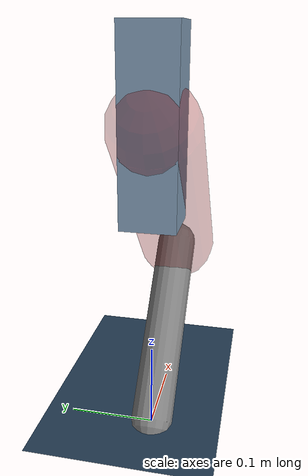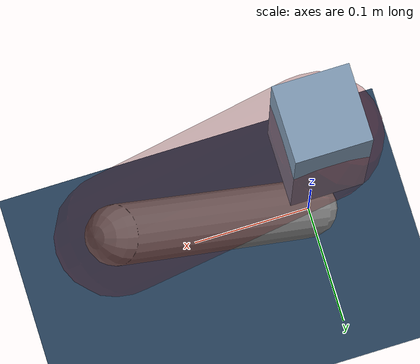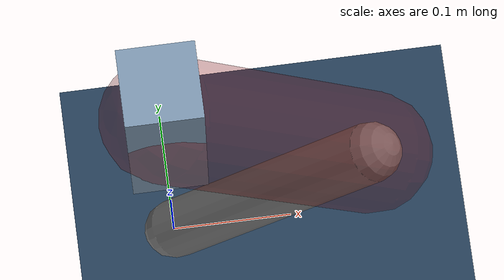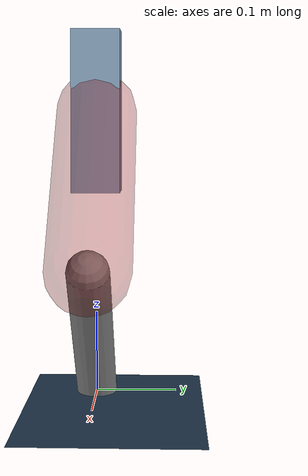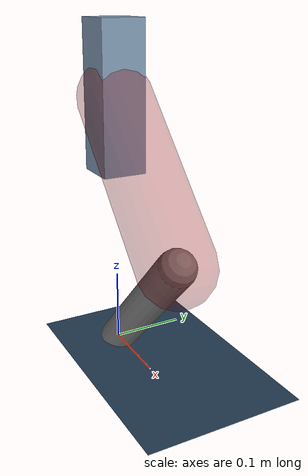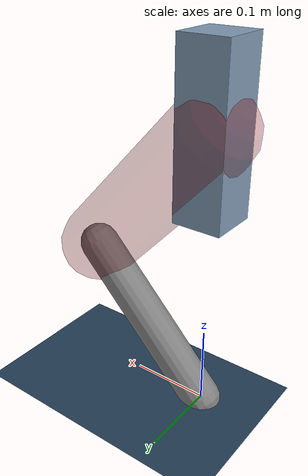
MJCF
<mujoco model="Hopper2D">
	<compiler inertiafromgeom="true" angle="radian" />
	<option timestep="0.001" integrator="implicit" cone="elliptic" solver="Newton" tolerance="1e-10" />

	<default>
		<geom contype="1" conaffinity="1" condim="3" friction="2 0.005 0.0001" solref="0.005 1" />
		<joint limited="true" damping="0.1" />
	</default>

	<asset>
		<texture name="skybox" type="skybox" builtin="gradient" rgb1=".4 .6 .8" rgb2="0 0 0" width="800" height="800" />
		<texture name="grid" type="2d" builtin="checker" rgb1=".1 .2 .3" rgb2=".2 .3 .4" width="300" height="300" mark="edge" markrgb=".2 .3 .4" />
		<material name="ground" texture="grid" texrepeat="1 1" texuniform="true" reflectance="0.1" />
		<material name="leg" rgba="0.5 0.6 0.7 1" />
	</asset>

	<worldbody>

		<geom name="floor" type="plane" size="5 5 0.25" material="ground" />

		<light directional="false" diffuse="0.8 0.8 0.8" specular="0.3 0.3 0.3" pos="0 0 2" dir="0 0 -1" />
		<light mode="targetbodycom" target="base" directional="false" diffuse="0.8 0.8 0.8" specular="0.3 0.3 0.3" pos="0 0 2" dir="0 0 -1" />

		<camera name="fixed" pos="0 -2 1" xyaxes="1 0 0 0 0 1" />
		<camera name="tracking" mode="trackcom" pos="0 -3 1" />

		<body name="root" pos="0 0 0.35302217588419327">
			<joint name="slide_x" type="slide" axis="1 0 0" range="-100 100" />
			<joint name="slide_z" type="slide" axis="0 0 1" range="0 10" />

			<body name="base" pos="0 0 0">
				<geom name="torso" type="box" size="0.03 0.03 0.1" mass="3.114" material="leg" />

				<body name="link1" pos="0 0 0" euler="0 0.8233429498513118 0">
					<joint type="hinge" axis="0 -1 0" pos="0 0 0" name="hinge1" limited="true" range="-3.14 3.14" stiffness="0" damping="0.1" />
					<geom name="thigh" type="capsule" fromto="0 0 0 0.2438829395766674 0 0" size="0.05" rgba="0.5 0 0 0.3" mass="0.8405956428993352" />

					<body name="link2" pos="0.2438829395766674 0 0" euler="0 1.5082406090092186 0">
						<joint type="hinge" axis="0 -1 0" pos="0 0 0" name="hinge2" limited="true" range="-3.14 3.14" stiffness="0" damping="0.1" />
						<geom name="shank" type="capsule" fromto="0 0 0 0.2404453238811746 0 0" size="0.025" mass="0.4346562591049397" />

					</body>
				</body>
			</body>
		</body>
	</worldbody>

	<actuator>
		<motor name="torque1" joint="hinge1" ctrlrange="-118.30832562654801 118.30832562654801" ctrllimited="true" gear="1" />
		<motor name="torque2" joint="hinge2" ctrlrange="-98.04861377907105 98.04861377907105" ctrllimited="true" gear="1" />
	</actuator>
</mujoco>
